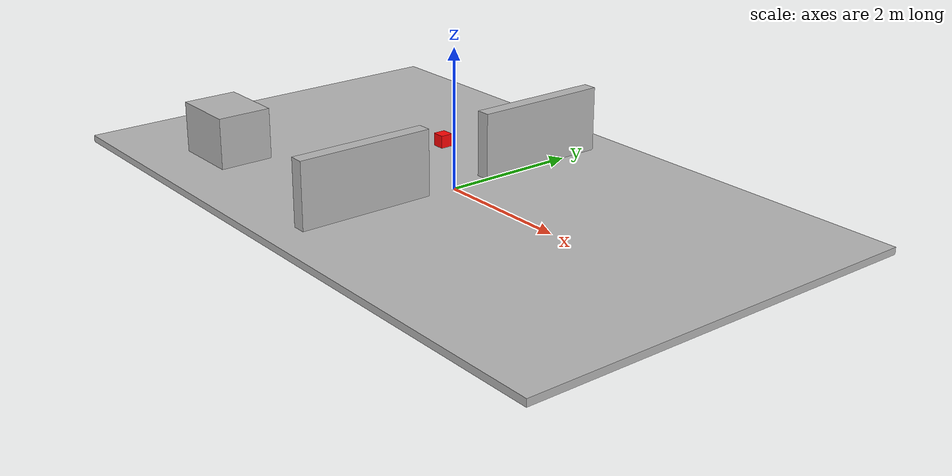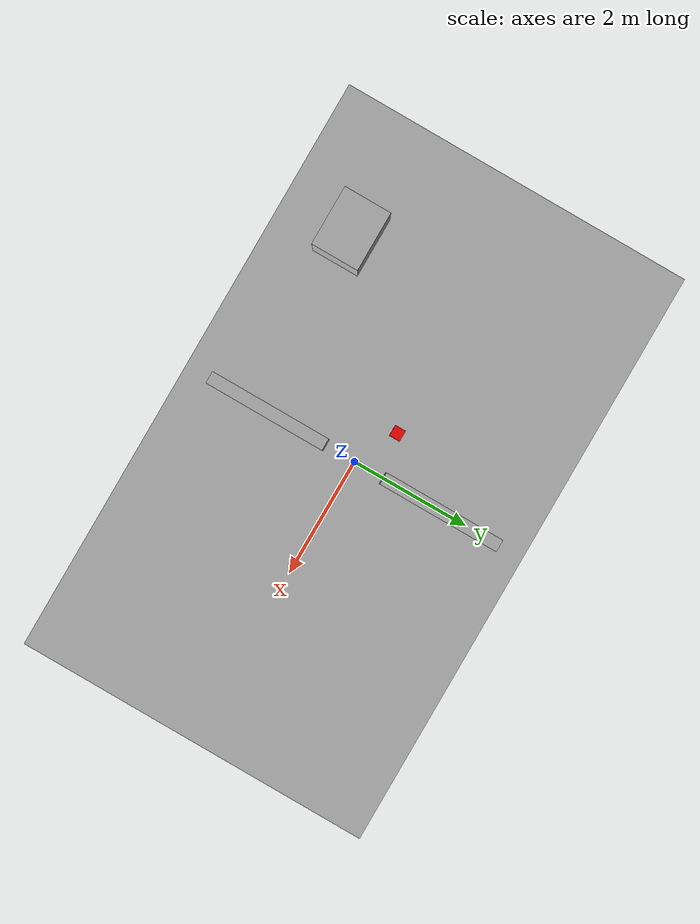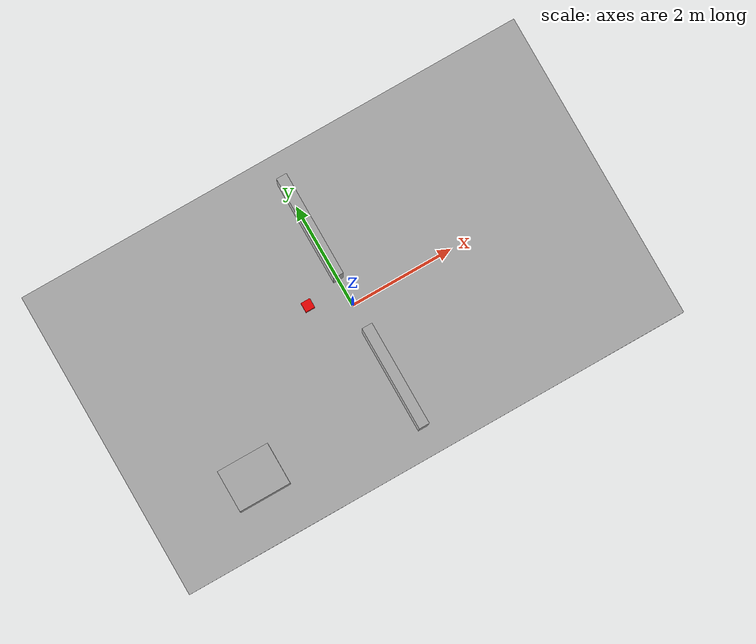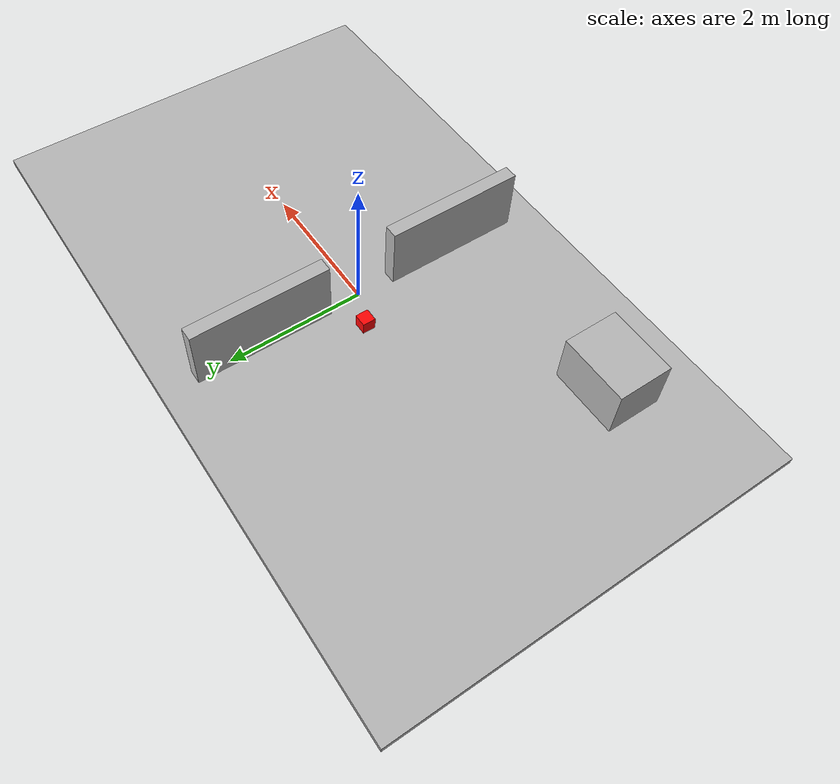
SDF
<?xml version="1.0"?>
<sdf version="1.9">
  <world name="embodied_lab_v1">
    <physics name="deterministic" type="ignored"><max_step_size>0.005</max_step_size><real_time_factor>1.0</real_time_factor></physics>
    <plugin filename="gz-sim-physics-system" name="gz::sim::systems::Physics"/>
    <plugin filename="gz-sim-user-commands-system" name="gz::sim::systems::UserCommands"/>
    <plugin filename="gz-sim-scene-broadcaster-system" name="gz::sim::systems::SceneBroadcaster"/>
    <plugin filename="gz-sim-sensors-system" name="gz::sim::systems::Sensors"/>
    <light name="overhead" type="directional"><pose>0 0 5 0 0 0</pose><diffuse>0.9 0.9 0.9 1</diffuse><specular>0.1 0.1 0.1 1</specular><direction>-0.3 -0.1 -1</direction></light>
    <model name="floor"><static>true</static><link name="floor"><collision name="collision"><geometry><box><size>10 6 0.1</size></box></geometry></collision><visual name="visual"><geometry><box><size>10 6 0.1</size></box></geometry></visual></link></model>
    <model name="inspection_station"><static>true</static><pose>-1.72 0 0.01 0 0 0</pose><link name="platform"><visual name="visual"><geometry><box><size>0.3 0.3 0.02</size></box></geometry><material><ambient>0.02 0.4 0.8 1</ambient><diffuse>0.02 0.4 0.8 1</diffuse></material></visual></link></model>
    <model name="object_table"><static>true</static><pose>-3 -1.8 0.4 0 0 0</pose><link name="body"><collision name="collision"><geometry><box><size>1.0 0.8 0.8</size></box></geometry></collision><visual name="visual"><geometry><box><size>1.0 0.8 0.8</size></box></geometry></visual></link></model>
    <model name="object_00_marker"><static>true</static><pose>-0.7 0.35 0.45 0 0 0</pose><link name="body"><collision name="collision"><geometry><box><size>0.18 0.18 0.18</size></box></geometry></collision><visual name="red_fiducial"><geometry><box><size>0.18 0.18 0.18</size></box></geometry><material><ambient>1 0.02 0.02 1</ambient><diffuse>1 0.02 0.02 1</diffuse><emissive>0.7 0 0 1</emissive></material></visual></link></model>
    <model name="restricted_zone_marker"><static>true</static><pose>1 -2 0.01 0 0 0</pose><link name="visual_only"><visual name="visual"><geometry><box><size>2 1 0.02</size></box></geometry><material><ambient>1 0 0 0.5</ambient></material></visual></link></model>
    <model name="room_divider_north"><static>true</static><pose>0 1.5 0.5 0 0 0</pose><link name="wall"><collision name="collision"><geometry><box><size>0.2 2 1</size></box></geometry></collision><visual name="visual"><geometry><box><size>0.2 2 1</size></box></geometry></visual></link></model>
    <model name="room_divider_south"><static>true</static><pose>0 -1.5 0.5 0 0 0</pose><link name="wall"><collision name="collision"><geometry><box><size>0.2 2 1</size></box></geometry></collision><visual name="visual"><geometry><box><size>0.2 2 1</size></box></geometry></visual></link></model>
  </world>
</sdf>
